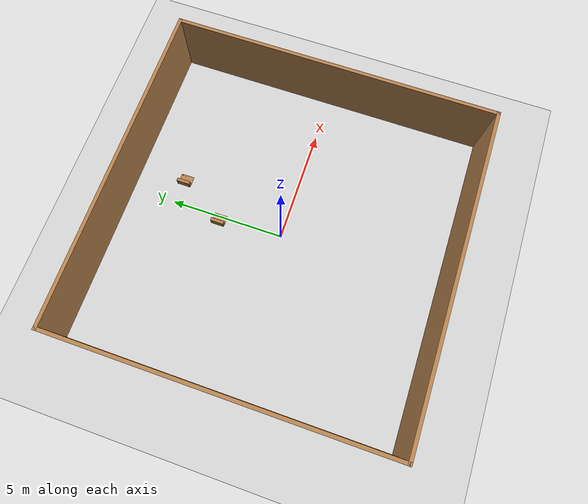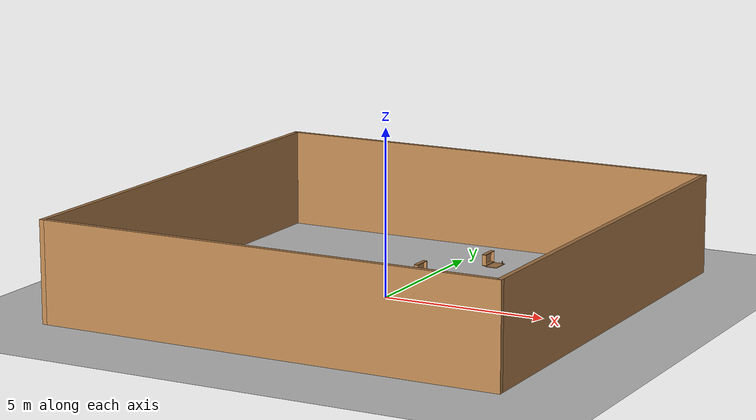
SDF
<sdf version="1.7">
 <world name="default">
  <light name="sun" type="directional">
   <pose>0 0 10 0 -0 0</pose>
   <diffuse>0.8 0.8 0.8 1</diffuse>
   <specular>0.2 0.2 0.2 1</specular>
   <attenuation>
    <range>1000</range>
    <constant>0.9</constant>
    <linear>0.01</linear>
    <quadratic>0.001</quadratic>
   </attenuation>
   <direction>-0.5 0.1 -0.9</direction>
   <spot><inner_angle>0</inner_angle><outer_angle>0</outer_angle><falloff>0</falloff></spot>
  </light>
  <model name="ground_plane">
   <static>1</static>
   <link name="link">
    <collision name="collision">
     <geometry><plane><normal>0 0 1</normal><size>100 100</size></plane></geometry>
     <surface>
      <contact><collide_bitmask>65535</collide_bitmask></contact>
      <friction><ode><mu>100</mu><mu2>50</mu2></ode></friction>
     </surface>
    </collision>
    <visual name="visual">
     <cast_shadows>0</cast_shadows>
     <geometry><plane><normal>0 0 1</normal><size>100 100</size></plane></geometry>
     <material>
      <script><uri>file://media/materials/scripts/gazebo.material</uri><name>Gazebo/Grey</name></script>
     </material>
    </visual>
   </link>
  </model>
  <gravity>0 0 -9.8</gravity>
  <magnetic_field>6e-06 2.3e-05 -4.2e-05</magnetic_field>
  <atmosphere type="adiabatic"/>
  <physics type="ode">
   <max_step_size>0.001</max_step_size>
   <real_time_factor>1</real_time_factor>
   <real_time_update_rate>1000</real_time_update_rate>
  </physics>
  <scene><ambient>0.4 0.4 0.4 1</ambient><background>0.7 0.7 0.7 1</background><shadows>1</shadows></scene>
  <spherical_coordinates>
   <surface_model>EARTH_WGS84</surface_model>
   <latitude_deg>0</latitude_deg>
   <longitude_deg>0</longitude_deg>
   <elevation>0</elevation>
   <heading_deg>0</heading_deg>
  </spherical_coordinates>
  <model name="room_wall_14_14">
   <link name="Wall_0">
    <collision name="Wall_0_Collision">
     <geometry><box><size>14.15 0.15 3</size></box></geometry>
     <pose>0 0 1.5 0 -0 0</pose>
    </collision>
    <visual name="Wall_0_Visual">
     <pose>0 0 1.5 0 -0 0</pose>
     <geometry><box><size>14.15 0.15 3</size></box></geometry>
     <material>
      <script><uri>file://media/materials/scripts/gazebo.material</uri><name>Gazebo/Wood</name></script>
      <ambient>1 1 1 1</ambient>
     </material>
     <meta><layer>0</layer></meta>
    </visual>
    <pose>-7 0 0 0 -0 1.5708</pose>
   </link>
   <link name="Wall_1">
    <collision name="Wall_1_Collision">
     <geometry><box><size>14.15 0.15 3</size></box></geometry>
     <pose>0 0 1.5 0 -0 0</pose>
    </collision>
    <visual name="Wall_1_Visual">
     <pose>0 0 1.5 0 -0 0</pose>
     <geometry><box><size>14.15 0.15 3</size></box></geometry>
     <material>
      <script><uri>file://media/materials/scripts/gazebo.material</uri><name>Gazebo/Wood</name></script>
      <ambient>1 1 1 1</ambient>
     </material>
     <meta><layer>0</layer></meta>
    </visual>
    <pose>0 7 0 0 -0 0</pose>
   </link>
   <link name="Wall_2">
    <collision name="Wall_2_Collision">
     <geometry><box><size>14.15 0.15 3</size></box></geometry>
     <pose>0 0 1.5 0 -0 0</pose>
    </collision>
    <visual name="Wall_2_Visual">
     <pose>0 0 1.5 0 -0 0</pose>
     <geometry><box><size>14.15 0.15 3</size></box></geometry>
     <material>
      <script><uri>file://media/materials/scripts/gazebo.material</uri><name>Gazebo/Wood</name></script>
      <ambient>1 1 1 1</ambient>
     </material>
     <meta><layer>0</layer></meta>
    </visual>
    <pose>7 0 0 0 -0 -1.5708</pose>
   </link>
   <link name="Wall_3">
    <collision name="Wall_3_Collision">
     <geometry><box><size>14.15 0.15 3</size></box></geometry>
     <pose>0 0 1.5 0 -0 0</pose>
    </collision>
    <visual name="Wall_3_Visual">
     <pose>0 0 1.5 0 -0 0</pose>
     <geometry><box><size>14.15 0.15 3</size></box></geometry>
     <material>
      <script><uri>file://media/materials/scripts/gazebo.material</uri><name>Gazebo/Wood</name></script>
      <ambient>1 1 1 1</ambient>
     </material>
     <meta><layer>0</layer></meta>
    </visual>
    <pose>0 -7 0 0 -0 3.14159</pose>
   </link>
   <static>1</static>
  </model>
  <audio><device>default</device></audio>
  <model name="wooden_case_metal_peg">
   <frame name="wooden_case::__model__" attached_to="wooden_case::base">
    <pose relative_to="__model__">0 0 0 0 -0 0</pose>
   </frame>
   <link name="wooden_case::base">
    <pose relative_to="wooden_case::__model__">0 0 0.024 0 -0 0</pose>
    <inertial>
     <pose>-0.022184 0 0.171592 0 -0 0</pose>
     <mass>3.96264</mass>
     <inertia>
      <ixx>0.213536</ixx>
      <ixy>0</ixy>
      <ixz>0.000779377</ixz>
      <iyy>0.0708943</iyy>
      <iyz>0</iyz>
      <izz>0.154604</izz>
     </inertia>
    </inertial>
    <collision name="collision_back">
     <pose>-0.053975 0 0.1778 0 -0 0</pose>
     <geometry><box><size>0.01905 0.5461 0.3175</size></box></geometry>
     <surface>
      <contact>
       <poissons_ratio>0.347</poissons_ratio>
       <elastic_modulus>8.8e+09</elastic_modulus>
       <ode><kp>100000</kp><kd>100</kd><max_vel>100</max_vel><min_depth>0.001</min_depth></ode>
      </contact>
      <friction>
       <torsional>
        <coefficient>1</coefficient>
        <use_patch_radius>0</use_patch_radius>
        <surface_radius>0.01</surface_radius>
       </torsional>
      </friction>
     </surface>
    </collision>
    <visual name="visual_back">
     <pose>-0.053975 0 0.1778 0 -0 0</pose>
     <geometry><box><size>0.01905 0.5461 0.3175</size></box></geometry>
     <material>
      <script><uri>file://media/materials/scripts/gazebo.material</uri><name>Gazebo/Wood</name></script>
     </material>
    </visual>
    <collision name="collision_bottom">
     <pose>0 0 0.009525 0 -0 0</pose>
     <geometry><box><size>0.127 0.5842 0.01905</size></box></geometry>
     <surface>
      <contact>
       <poissons_ratio>0.347</poissons_ratio>
       <elastic_modulus>8.8e+09</elastic_modulus>
       <ode><kp>100000</kp><kd>100</kd><max_vel>100</max_vel><min_depth>0.001</min_depth></ode>
      </contact>
      <friction>
       <torsional>
        <coefficient>1</coefficient>
        <use_patch_radius>0</use_patch_radius>
        <surface_radius>0.01</surface_radius>
       </torsional>
      </friction>
     </surface>
    </collision>
    <visual name="visual_bottom">
     <pose>0 0 0.009525 0 -0 0</pose>
     <geometry><box><size>0.127 0.5842 0.01905</size></box></geometry>
     <material>
      <script><uri>file://media/materials/scripts/gazebo.material</uri><name>Gazebo/Wood</name></script>
     </material>
    </visual>
    <collision name="collision_top">
     <pose>0 0 0.346075 0 -0 0</pose>
     <geometry><box><size>0.127 0.5842 0.01905</size></box></geometry>
     <surface>
      <contact>
       <poissons_ratio>0.347</poissons_ratio>
       <elastic_modulus>8.8e+09</elastic_modulus>
       <ode><kp>100000</kp><kd>100</kd><max_vel>100</max_vel><min_depth>0.001</min_depth></ode>
      </contact>
      <friction>
       <torsional>
        <coefficient>1</coefficient>
        <use_patch_radius>0</use_patch_radius>
        <surface_radius>0.01</surface_radius>
       </torsional>
      </friction>
     </surface>
    </collision>
    <visual name="visual_top">
     <pose>0 0 0.346075 0 -0 0</pose>
     <geometry><box><size>0.127 0.5842 0.01905</size></box></geometry>
     <material>
      <script><uri>file://media/materials/scripts/gazebo.material</uri><name>Gazebo/Wood</name></script>
     </material>
    </visual>
    <collision name="collision_left">
     <pose>0 -0.282575 0.1778 0 -0 0</pose>
     <geometry><box><size>0.127 0.01905 0.3175</size></box></geometry>
     <surface>
      <contact>
       <poissons_ratio>0.347</poissons_ratio>
       <elastic_modulus>8.8e+09</elastic_modulus>
       <ode><kp>100000</kp><kd>100</kd><max_vel>100</max_vel><min_depth>0.001</min_depth></ode>
      </contact>
      <friction>
       <torsional>
        <coefficient>1</coefficient>
        <use_patch_radius>0</use_patch_radius>
        <surface_radius>0.01</surface_radius>
       </torsional>
      </friction>
     </surface>
    </collision>
    <visual name="visual_left">
     <pose>0 -0.282575 0.1778 0 -0 0</pose>
     <geometry><box><size>0.127 0.01905 0.3175</size></box></geometry>
     <material>
      <script><uri>file://media/materials/scripts/gazebo.material</uri><name>Gazebo/Wood</name></script>
     </material>
    </visual>
    <collision name="collision_right">
     <pose>0 0.282575 0.1778 0 -0 0</pose>
     <geometry><box><size>0.127 0.01905 0.3175</size></box></geometry>
     <surface>
      <contact>
       <poissons_ratio>0.347</poissons_ratio>
       <elastic_modulus>8.8e+09</elastic_modulus>
       <ode><kp>100000</kp><kd>100</kd><max_vel>100</max_vel><min_depth>0.001</min_depth></ode>
      </contact>
      <friction>
       <torsional>
        <coefficient>1</coefficient>
        <use_patch_radius>0</use_patch_radius>
        <surface_radius>0.01</surface_radius>
       </torsional>
      </friction>
     </surface>
    </collision>
    <visual name="visual_right">
     <pose>0 0.282575 0.1778 0 -0 0</pose>
     <geometry><box><size>0.127 0.01905 0.3175</size></box></geometry>
     <material>
      <script><uri>file://media/materials/scripts/gazebo.material</uri><name>Gazebo/Wood</name></script>
     </material>
    </visual>
    <collision name="collision_block_left">
     <pose>0.0095 -0.2151 -0.012 0 -0 0</pose>
     <geometry><box><size>0.108 0.05 0.024</size></box></geometry>
     <surface>
      <contact>
       <poissons_ratio>0.347</poissons_ratio>
       <elastic_modulus>8.8e+09</elastic_modulus>
       <ode><kp>100000</kp><kd>100</kd><max_vel>100</max_vel><min_depth>0.001</min_depth></ode>
      </contact>
      <friction>
       <torsional>
        <coefficient>1</coefficient>
        <use_patch_radius>0</use_patch_radius>
        <surface_radius>0.01</surface_radius>
       </torsional>
      </friction>
     </surface>
    </collision>
    <visual name="visual_block_left">
     <pose>0.0095 -0.2151 -0.012 0 -0 0</pose>
     <geometry><box><size>0.108 0.05 0.024</size></box></geometry>
     <material>
      <script><uri>file://media/materials/scripts/gazebo.material</uri><name>Gazebo/Wood</name></script>
     </material>
    </visual>
    <collision name="collision_block_right">
     <pose>0.0095 0.2151 -0.012 0 -0 0</pose>
     <geometry><box><size>0.108 0.05 0.024</size></box></geometry>
     <surface>
      <contact>
       <poissons_ratio>0.347</poissons_ratio>
       <elastic_modulus>8.8e+09</elastic_modulus>
       <ode><kp>100000</kp><kd>100</kd><max_vel>100</max_vel><min_depth>0.001</min_depth></ode>
      </contact>
      <friction>
       <torsional>
        <coefficient>1</coefficient>
        <use_patch_radius>0</use_patch_radius>
        <surface_radius>0.01</surface_radius>
       </torsional>
      </friction>
     </surface>
    </collision>
    <visual name="visual_block_right">
     <pose>0.0095 0.2151 -0.012 0 -0 0</pose>
     <geometry><box><size>0.108 0.05 0.024</size></box></geometry>
     <material>
      <script><uri>file://media/materials/scripts/gazebo.material</uri><name>Gazebo/Wood</name></script>
     </material>
    </visual>
   </link>
   <link name="wooden_case::lid">
    <pose relative_to="wooden_case::__model__">0.243775 0 0.009525 0 -0 0</pose>
    <inertial>
     <mass>1.97874</mass>
     <inertia>
      <ixx>0.0563367</ixx>
      <ixy>0</ixy>
      <ixz>0</ixz>
      <iyy>0.020911</iyy>
      <iyz>0</iyz>
      <izz>0.0771281</izz>
     </inertia>
    </inertial>
    <collision name="collision">
     <geometry><box><size>0.3556 0.5842 0.01905</size></box></geometry>
     <surface>
      <contact>
       <poissons_ratio>0.347</poissons_ratio>
       <elastic_modulus>8.8e+09</elastic_modulus>
       <ode><kp>100000</kp><kd>100</kd><max_vel>100</max_vel><min_depth>0.001</min_depth></ode>
      </contact>
      <friction>
       <torsional>
        <coefficient>1</coefficient>
        <use_patch_radius>0</use_patch_radius>
        <surface_radius>0.01</surface_radius>
       </torsional>
      </friction>
     </surface>
    </collision>
    <visual name="visual">
     <geometry><box><size>0.3556 0.5842 0.01905</size></box></geometry>
     <material>
      <script><uri>file://media/materials/scripts/gazebo.material</uri><name>Gazebo/Wood</name></script>
     </material>
    </visual>
    <visual name="tee_nut_1">
     <pose>0.122 -0.216 0 0 -0 0</pose>
     <geometry><cylinder><radius>0.00635</radius><length>0.0192405</length></cylinder></geometry>
     <material>
      <script><uri>file://media/materials/scripts/gazebo.material</uri><name>Gazebo/Grey</name></script>
     </material>
    </visual>
    <visual name="tee_nut_2">
     <pose>0.122 -0.088 0 0 -0 0</pose>
     <geometry><cylinder><radius>0.00635</radius><length>0.0192405</length></cylinder></geometry>
     <material>
      <script><uri>file://media/materials/scripts/gazebo.material</uri><name>Gazebo/Grey</name></script>
     </material>
    </visual>
    <visual name="tee_nut_3">
     <pose>0.122 0.088 0 0 -0 0</pose>
     <geometry><cylinder><radius>0.00635</radius><length>0.0192405</length></cylinder></geometry>
     <material>
      <script><uri>file://media/materials/scripts/gazebo.material</uri><name>Gazebo/Grey</name></script>
     </material>
    </visual>
    <visual name="tee_nut_4">
     <pose>0.122 0.216 0 0 -0 0</pose>
     <geometry><cylinder><radius>0.00635</radius><length>0.0192405</length></cylinder></geometry>
     <material>
      <script><uri>file://media/materials/scripts/gazebo.material</uri><name>Gazebo/Grey</name></script>
     </material>
    </visual>
   </link>
   <joint name="wooden_case::lid_hinge" type="revolute">
    <pose>-0.1778 0 0.01905 0 -0 0</pose>
    <parent>wooden_case::base</parent>
    <child>wooden_case::lid</child>
    <axis>
     <xyz>0 1 0</xyz>
     <limit><upper>0.523599</upper><lower>-1.5708</lower></limit>
     <dynamics><spring_reference>0</spring_reference><spring_stiffness>0</spring_stiffness></dynamics>
    </axis>
   </joint>
   <frame name="peg::__model__" attached_to="peg::link">
    <pose relative_to="__model__">0.365774 0.216 0.01905 0 -0 0</pose>
   </frame>
   <link name="peg::link">
    <pose relative_to="peg::__model__">0 0 0.031 0 -0 0</pose>
    <inertial>
     <mass>0.0121</mass>
     <inertia>
      <ixx>3.90898e-06</ixx>
      <ixy>0</ixy>
      <ixz>0</ixz>
      <iyy>3.90898e-06</iyy>
      <iyz>0</iyz>
      <izz>6.58845e-08</izz>
     </inertia>
    </inertial>
    <collision name="collision">
     <geometry><cylinder><radius>0.0033</radius><length>0.062</length></cylinder></geometry>
     <surface>
      <contact>
       <poissons_ratio>0.305</poissons_ratio>
       <elastic_modulus>2e+11</elastic_modulus>
       <ode><kp>100000</kp><kd>100</kd><max_vel>100</max_vel><min_depth>0.001</min_depth></ode>
      </contact>
      <friction>
       <torsional>
        <coefficient>1</coefficient>
        <use_patch_radius>0</use_patch_radius>
        <surface_radius>0.01</surface_radius>
       </torsional>
      </friction>
     </surface>
    </collision>
    <visual name="visual">
     <geometry><cylinder><radius>0.0033</radius><length>0.062</length></cylinder></geometry>
     <material>
      <script><uri>file://media/materials/scripts/gazebo.material</uri><name>Gazebo/Grey</name></script>
     </material>
    </visual>
   </link>
   <joint name="case_peg" type="revolute">
    <child>peg::link</child>
    <parent>wooden_case::lid</parent>
    <axis>
     <xyz>0 0 1</xyz>
     <limit><upper>0</upper><lower>0</lower></limit>
     <dynamics><spring_reference>0</spring_reference><spring_stiffness>0</spring_stiffness></dynamics>
    </axis>
   </joint>
   <pose>-0.310008 2.80199 -0.001057 0 -0.000429 0</pose>
  </model>
  <model name="wooden_case_wooden_peg">
   <frame name="wooden_case::__model__" attached_to="wooden_case::base">
    <pose relative_to="__model__">0 0 0 0 -0 0</pose>
   </frame>
   <link name="wooden_case::base">
    <pose relative_to="wooden_case::__model__">0 0 0.024 0 -0 0</pose>
    <inertial>
     <pose>-0.022184 0 0.171592 0 -0 0</pose>
     <mass>3.96264</mass>
     <inertia>
      <ixx>0.213536</ixx>
      <ixy>0</ixy>
      <ixz>0.000779377</ixz>
      <iyy>0.0708943</iyy>
      <iyz>0</iyz>
      <izz>0.154604</izz>
     </inertia>
    </inertial>
    <collision name="collision_back">
     <pose>-0.053975 0 0.1778 0 -0 0</pose>
     <geometry><box><size>0.01905 0.5461 0.3175</size></box></geometry>
     <surface>
      <contact>
       <poissons_ratio>0.347</poissons_ratio>
       <elastic_modulus>8.8e+09</elastic_modulus>
       <ode><kp>100000</kp><kd>100</kd><max_vel>100</max_vel><min_depth>0.001</min_depth></ode>
      </contact>
      <friction>
       <torsional>
        <coefficient>1</coefficient>
        <use_patch_radius>0</use_patch_radius>
        <surface_radius>0.01</surface_radius>
       </torsional>
      </friction>
     </surface>
    </collision>
    <visual name="visual_back">
     <pose>-0.053975 0 0.1778 0 -0 0</pose>
     <geometry><box><size>0.01905 0.5461 0.3175</size></box></geometry>
     <material>
      <script><uri>file://media/materials/scripts/gazebo.material</uri><name>Gazebo/Wood</name></script>
     </material>
    </visual>
    <collision name="collision_bottom">
     <pose>0 0 0.009525 0 -0 0</pose>
     <geometry><box><size>0.127 0.5842 0.01905</size></box></geometry>
     <surface>
      <contact>
       <poissons_ratio>0.347</poissons_ratio>
       <elastic_modulus>8.8e+09</elastic_modulus>
       <ode><kp>100000</kp><kd>100</kd><max_vel>100</max_vel><min_depth>0.001</min_depth></ode>
      </contact>
      <friction>
       <torsional>
        <coefficient>1</coefficient>
        <use_patch_radius>0</use_patch_radius>
        <surface_radius>0.01</surface_radius>
       </torsional>
      </friction>
     </surface>
    </collision>
    <visual name="visual_bottom">
     <pose>0 0 0.009525 0 -0 0</pose>
     <geometry><box><size>0.127 0.5842 0.01905</size></box></geometry>
     <material>
      <script><uri>file://media/materials/scripts/gazebo.material</uri><name>Gazebo/Wood</name></script>
     </material>
    </visual>
    <collision name="collision_top">
     <pose>0 0 0.346075 0 -0 0</pose>
     <geometry><box><size>0.127 0.5842 0.01905</size></box></geometry>
     <surface>
      <contact>
       <poissons_ratio>0.347</poissons_ratio>
       <elastic_modulus>8.8e+09</elastic_modulus>
       <ode><kp>100000</kp><kd>100</kd><max_vel>100</max_vel><min_depth>0.001</min_depth></ode>
      </contact>
      <friction>
       <torsional>
        <coefficient>1</coefficient>
        <use_patch_radius>0</use_patch_radius>
        <surface_radius>0.01</surface_radius>
       </torsional>
      </friction>
     </surface>
    </collision>
    <visual name="visual_top">
     <pose>0 0 0.346075 0 -0 0</pose>
     <geometry><box><size>0.127 0.5842 0.01905</size></box></geometry>
     <material>
      <script><uri>file://media/materials/scripts/gazebo.material</uri><name>Gazebo/Wood</name></script>
     </material>
    </visual>
    <collision name="collision_left">
     <pose>0 -0.282575 0.1778 0 -0 0</pose>
     <geometry><box><size>0.127 0.01905 0.3175</size></box></geometry>
     <surface>
      <contact>
       <poissons_ratio>0.347</poissons_ratio>
       <elastic_modulus>8.8e+09</elastic_modulus>
       <ode><kp>100000</kp><kd>100</kd><max_vel>100</max_vel><min_depth>0.001</min_depth></ode>
      </contact>
      <friction>
       <torsional>
        <coefficient>1</coefficient>
        <use_patch_radius>0</use_patch_radius>
        <surface_radius>0.01</surface_radius>
       </torsional>
      </friction>
     </surface>
    </collision>
    <visual name="visual_left">
     <pose>0 -0.282575 0.1778 0 -0 0</pose>
     <geometry><box><size>0.127 0.01905 0.3175</size></box></geometry>
     <material>
      <script><uri>file://media/materials/scripts/gazebo.material</uri><name>Gazebo/Wood</name></script>
     </material>
    </visual>
    <collision name="collision_right">
     <pose>0 0.282575 0.1778 0 -0 0</pose>
     <geometry><box><size>0.127 0.01905 0.3175</size></box></geometry>
     <surface>
      <contact>
       <poissons_ratio>0.347</poissons_ratio>
       <elastic_modulus>8.8e+09</elastic_modulus>
       <ode><kp>100000</kp><kd>100</kd><max_vel>100</max_vel><min_depth>0.001</min_depth></ode>
      </contact>
      <friction>
       <torsional>
        <coefficient>1</coefficient>
        <use_patch_radius>0</use_patch_radius>
        <surface_radius>0.01</surface_radius>
       </torsional>
      </friction>
     </surface>
    </collision>
    <visual name="visual_right">
     <pose>0 0.282575 0.1778 0 -0 0</pose>
     <geometry><box><size>0.127 0.01905 0.3175</size></box></geometry>
     <material>
      <script><uri>file://media/materials/scripts/gazebo.material</uri><name>Gazebo/Wood</name></script>
     </material>
    </visual>
    <collision name="collision_block_left">
     <pose>0.0095 -0.2151 -0.012 0 -0 0</pose>
     <geometry><box><size>0.108 0.05 0.024</size></box></geometry>
     <surface>
      <contact>
       <poissons_ratio>0.347</poissons_ratio>
       <elastic_modulus>8.8e+09</elastic_modulus>
       <ode><kp>100000</kp><kd>100</kd><max_vel>100</max_vel><min_depth>0.001</min_depth></ode>
      </contact>
      <friction>
       <torsional>
        <coefficient>1</coefficient>
        <use_patch_radius>0</use_patch_radius>
        <surface_radius>0.01</surface_radius>
       </torsional>
      </friction>
     </surface>
    </collision>
    <visual name="visual_block_left">
     <pose>0.0095 -0.2151 -0.012 0 -0 0</pose>
     <geometry><box><size>0.108 0.05 0.024</size></box></geometry>
     <material>
      <script><uri>file://media/materials/scripts/gazebo.material</uri><name>Gazebo/Wood</name></script>
     </material>
    </visual>
    <collision name="collision_block_right">
     <pose>0.0095 0.2151 -0.012 0 -0 0</pose>
     <geometry><box><size>0.108 0.05 0.024</size></box></geometry>
     <surface>
      <contact>
       <poissons_ratio>0.347</poissons_ratio>
       <elastic_modulus>8.8e+09</elastic_modulus>
       <ode><kp>100000</kp><kd>100</kd><max_vel>100</max_vel><min_depth>0.001</min_depth></ode>
      </contact>
      <friction>
       <torsional>
        <coefficient>1</coefficient>
        <use_patch_radius>0</use_patch_radius>
        <surface_radius>0.01</surface_radius>
       </torsional>
      </friction>
     </surface>
    </collision>
    <visual name="visual_block_right">
     <pose>0.0095 0.2151 -0.012 0 -0 0</pose>
     <geometry><box><size>0.108 0.05 0.024</size></box></geometry>
     <material>
      <script><uri>file://media/materials/scripts/gazebo.material</uri><name>Gazebo/Wood</name></script>
     </material>
    </visual>
   </link>
   <link name="wooden_case::lid">
    <pose relative_to="wooden_case::__model__">0.243775 0 0.009525 0 -0 0</pose>
    <inertial>
     <mass>1.97874</mass>
     <inertia>
      <ixx>0.0563367</ixx>
      <ixy>0</ixy>
      <ixz>0</ixz>
      <iyy>0.020911</iyy>
      <iyz>0</iyz>
      <izz>0.0771281</izz>
     </inertia>
    </inertial>
    <collision name="collision">
     <geometry><box><size>0.3556 0.5842 0.01905</size></box></geometry>
     <surface>
      <contact>
       <poissons_ratio>0.347</poissons_ratio>
       <elastic_modulus>8.8e+09</elastic_modulus>
       <ode><kp>100000</kp><kd>100</kd><max_vel>100</max_vel><min_depth>0.001</min_depth></ode>
      </contact>
      <friction>
       <torsional>
        <coefficient>1</coefficient>
        <use_patch_radius>0</use_patch_radius>
        <surface_radius>0.01</surface_radius>
       </torsional>
      </friction>
     </surface>
    </collision>
    <visual name="visual">
     <geometry><box><size>0.3556 0.5842 0.01905</size></box></geometry>
     <material>
      <script><uri>file://media/materials/scripts/gazebo.material</uri><name>Gazebo/Wood</name></script>
     </material>
    </visual>
    <visual name="tee_nut_1">
     <pose>0.122 -0.216 0 0 -0 0</pose>
     <geometry><cylinder><radius>0.00635</radius><length>0.0192405</length></cylinder></geometry>
     <material>
      <script><uri>file://media/materials/scripts/gazebo.material</uri><name>Gazebo/Grey</name></script>
     </material>
    </visual>
    <visual name="tee_nut_2">
     <pose>0.122 -0.088 0 0 -0 0</pose>
     <geometry><cylinder><radius>0.00635</radius><length>0.0192405</length></cylinder></geometry>
     <material>
      <script><uri>file://media/materials/scripts/gazebo.material</uri><name>Gazebo/Grey</name></script>
     </material>
    </visual>
    <visual name="tee_nut_3">
     <pose>0.122 0.088 0 0 -0 0</pose>
     <geometry><cylinder><radius>0.00635</radius><length>0.0192405</length></cylinder></geometry>
     <material>
      <script><uri>file://media/materials/scripts/gazebo.material</uri><name>Gazebo/Grey</name></script>
     </material>
    </visual>
    <visual name="tee_nut_4">
     <pose>0.122 0.216 0 0 -0 0</pose>
     <geometry><cylinder><radius>0.00635</radius><length>0.0192405</length></cylinder></geometry>
     <material>
      <script><uri>file://media/materials/scripts/gazebo.material</uri><name>Gazebo/Grey</name></script>
     </material>
    </visual>
   </link>
   <joint name="wooden_case::lid_hinge" type="revolute">
    <pose>-0.1778 0 0.01905 0 -0 0</pose>
    <parent>wooden_case::base</parent>
    <child>wooden_case::lid</child>
    <axis>
     <xyz>0 1 0</xyz>
     <limit><upper>0.523599</upper><lower>-1.5708</lower></limit>
     <dynamics><spring_reference>0</spring_reference><spring_stiffness>0</spring_stiffness></dynamics>
    </axis>
   </joint>
   <frame name="peg::__model__" attached_to="peg::link">
    <pose relative_to="__model__">0.365774 0.216 0.01905 0 -0 0</pose>
   </frame>
   <link name="peg::link">
    <pose relative_to="peg::__model__">0 0 0.04 0 -0 0</pose>
    <inertial>
     <mass>0.0175</mass>
     <inertia>
      <ixx>9.74923e-06</ixx>
      <ixy>0</ixy>
      <ixz>0</ixz>
      <iyy>9.74923e-06</iyy>
      <iyz>0</iyz>
      <izz>8.31797e-07</izz>
     </inertia>
    </inertial>
    <collision name="collision">
     <geometry><cylinder><radius>0.00975</radius><length>0.08</length></cylinder></geometry>
     <surface>
      <contact>
       <poissons_ratio>0.347</poissons_ratio>
       <elastic_modulus>8.8e+09</elastic_modulus>
       <ode><kp>100000</kp><kd>100</kd><max_vel>100</max_vel><min_depth>0.001</min_depth></ode>
      </contact>
      <friction>
       <torsional>
        <coefficient>1</coefficient>
        <use_patch_radius>0</use_patch_radius>
        <surface_radius>0.01</surface_radius>
       </torsional>
      </friction>
     </surface>
    </collision>
    <visual name="visual">
     <geometry><cylinder><radius>0.00975</radius><length>0.08</length></cylinder></geometry>
     <material>
      <script><uri>file://media/materials/scripts/gazebo.material</uri><name>Gazebo/Wood</name></script>
     </material>
    </visual>
   </link>
   <joint name="case_peg" type="revolute">
    <child>peg::link</child>
    <parent>wooden_case::lid</parent>
    <axis>
     <xyz>0 0 1</xyz>
     <limit><upper>0</upper><lower>0</lower></limit>
     <dynamics><spring_reference>0</spring_reference><spring_stiffness>0</spring_stiffness></dynamics>
    </axis>
   </joint>
   <pose>0.938935 4.87397 -0.001057 -1e-06 -0.000429 0</pose>
  </model>
 </world>
</sdf>
